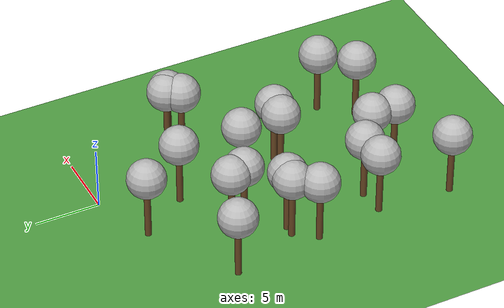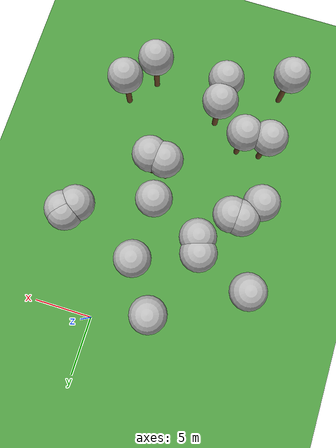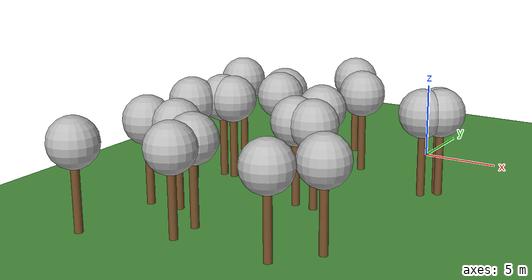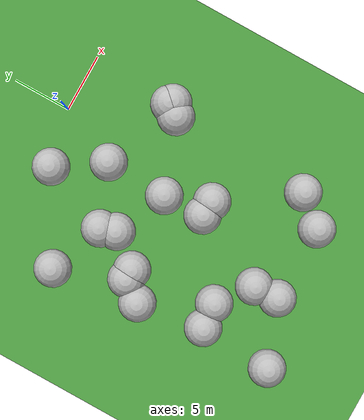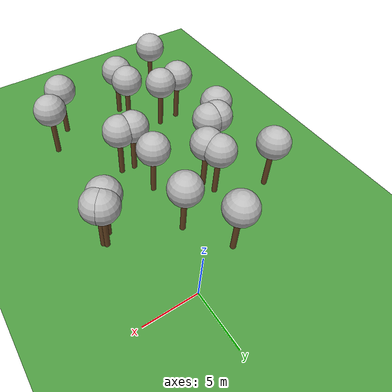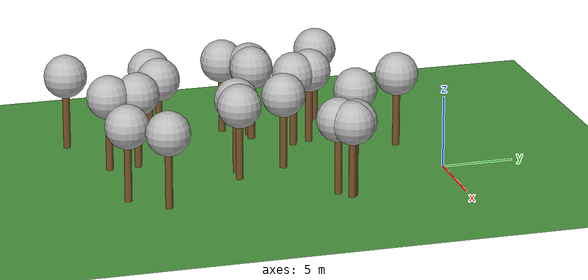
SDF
<sdf version="1.5">
 <world name="default">
  <model name="tree_simple463">
   <static>1</static>
   <link name="link">
    <pose>0 0 0.1 0 -0 0</pose>
    <collision name="collision_trunk">
     <pose>0 0 2 0 -0 0</pose>
     <geometry><cylinder><radius>0.25</radius><length>4</length></cylinder></geometry>
    </collision>
    <collision name="collision_treetop">
     <pose>0 0 5.2 0 -0 0</pose>
     <geometry><sphere><radius>1.5</radius></sphere></geometry>
    </collision>
    <visual name="trunk">
     <pose>0 0 2 0 -0 0</pose>
     <geometry><cylinder><radius>0.25</radius><length>4</length></cylinder></geometry>
     <material>
      <script>
       <uri>model://tree_simple/scripts</uri>
       <uri>model://tree_simple/materials/textures</uri>
       <name>TreeSimple/Trunk</name>
      </script>
     </material>
    </visual>
    <visual name="treetop">
     <pose>0 0 5.2 0 -0 0</pose>
     <geometry><sphere><radius>1.5</radius></sphere></geometry>
     <material>
      <script>
       <uri>model://tree_simple/scripts</uri>
       <uri>model://tree_simple/materials/textures</uri>
       <name>TreeSimple/Treetop</name>
      </script>
     </material>
    </visual>
   </link>
   <pose>4.14452898467 -7.71733475474 0 0 -0 0</pose>
  </model>
  <model name="tree_simple415">
   <static>1</static>
   <link name="link">
    <pose>0 0 0.1 0 -0 0</pose>
    <collision name="collision_trunk">
     <pose>0 0 2 0 -0 0</pose>
     <geometry><cylinder><radius>0.25</radius><length>4</length></cylinder></geometry>
    </collision>
    <collision name="collision_treetop">
     <pose>0 0 5.2 0 -0 0</pose>
     <geometry><sphere><radius>1.5</radius></sphere></geometry>
    </collision>
    <visual name="trunk">
     <pose>0 0 2 0 -0 0</pose>
     <geometry><cylinder><radius>0.25</radius><length>4</length></cylinder></geometry>
     <material>
      <script>
       <uri>model://tree_simple/scripts</uri>
       <uri>model://tree_simple/materials/textures</uri>
       <name>TreeSimple/Trunk</name>
      </script>
     </material>
    </visual>
    <visual name="treetop">
     <pose>0 0 5.2 0 -0 0</pose>
     <geometry><sphere><radius>1.5</radius></sphere></geometry>
     <material>
      <script>
       <uri>model://tree_simple/scripts</uri>
       <uri>model://tree_simple/materials/textures</uri>
       <name>TreeSimple/Treetop</name>
      </script>
     </material>
    </visual>
   </link>
   <pose>-11.6355979465 -5.8252534874 0 0 -0 0</pose>
  </model>
  <model name="tree_simple392">
   <static>1</static>
   <link name="link">
    <pose>0 0 0.1 0 -0 0</pose>
    <collision name="collision_trunk">
     <pose>0 0 2 0 -0 0</pose>
     <geometry><cylinder><radius>0.25</radius><length>4</length></cylinder></geometry>
    </collision>
    <collision name="collision_treetop">
     <pose>0 0 5.2 0 -0 0</pose>
     <geometry><sphere><radius>1.5</radius></sphere></geometry>
    </collision>
    <visual name="trunk">
     <pose>0 0 2 0 -0 0</pose>
     <geometry><cylinder><radius>0.25</radius><length>4</length></cylinder></geometry>
     <material>
      <script>
       <uri>model://tree_simple/scripts</uri>
       <uri>model://tree_simple/materials/textures</uri>
       <name>TreeSimple/Trunk</name>
      </script>
     </material>
    </visual>
    <visual name="treetop">
     <pose>0 0 5.2 0 -0 0</pose>
     <geometry><sphere><radius>1.5</radius></sphere></geometry>
     <material>
      <script>
       <uri>model://tree_simple/scripts</uri>
       <uri>model://tree_simple/materials/textures</uri>
       <name>TreeSimple/Treetop</name>
      </script>
     </material>
    </visual>
   </link>
   <pose>-2.49227665262 -10.6347787598 0 0 -0 0</pose>
  </model>
  <model name="tree_simple364">
   <static>1</static>
   <link name="link">
    <pose>0 0 0.1 0 -0 0</pose>
    <collision name="collision_trunk">
     <pose>0 0 2 0 -0 0</pose>
     <geometry><cylinder><radius>0.25</radius><length>4</length></cylinder></geometry>
    </collision>
    <collision name="collision_treetop">
     <pose>0 0 5.2 0 -0 0</pose>
     <geometry><sphere><radius>1.5</radius></sphere></geometry>
    </collision>
    <visual name="trunk">
     <pose>0 0 2 0 -0 0</pose>
     <geometry><cylinder><radius>0.25</radius><length>4</length></cylinder></geometry>
     <material>
      <script>
       <uri>model://tree_simple/scripts</uri>
       <uri>model://tree_simple/materials/textures</uri>
       <name>TreeSimple/Trunk</name>
      </script>
     </material>
    </visual>
    <visual name="treetop">
     <pose>0 0 5.2 0 -0 0</pose>
     <geometry><sphere><radius>1.5</radius></sphere></geometry>
     <material>
      <script>
       <uri>model://tree_simple/scripts</uri>
       <uri>model://tree_simple/materials/textures</uri>
       <name>TreeSimple/Treetop</name>
      </script>
     </material>
    </visual>
   </link>
   <pose>-5.23612591395 -20.1562951187 0 0 -0 0</pose>
  </model>
  <model name="tree_simple347">
   <static>1</static>
   <link name="link">
    <pose>0 0 0.1 0 -0 0</pose>
    <collision name="collision_trunk">
     <pose>0 0 2 0 -0 0</pose>
     <geometry><cylinder><radius>0.25</radius><length>4</length></cylinder></geometry>
    </collision>
    <collision name="collision_treetop">
     <pose>0 0 5.2 0 -0 0</pose>
     <geometry><sphere><radius>1.5</radius></sphere></geometry>
    </collision>
    <visual name="trunk">
     <pose>0 0 2 0 -0 0</pose>
     <geometry><cylinder><radius>0.25</radius><length>4</length></cylinder></geometry>
     <material>
      <script>
       <uri>model://tree_simple/scripts</uri>
       <uri>model://tree_simple/materials/textures</uri>
       <name>TreeSimple/Trunk</name>
      </script>
     </material>
    </visual>
    <visual name="treetop">
     <pose>0 0 5.2 0 -0 0</pose>
     <geometry><sphere><radius>1.5</radius></sphere></geometry>
     <material>
      <script>
       <uri>model://tree_simple/scripts</uri>
       <uri>model://tree_simple/materials/textures</uri>
       <name>TreeSimple/Treetop</name>
      </script>
     </material>
    </visual>
   </link>
   <pose>-10.2981062424 -24.1175281228 0 0 -0 0</pose>
  </model>
  <model name="tree_simple322">
   <static>1</static>
   <link name="link">
    <pose>0 0 0.1 0 -0 0</pose>
    <collision name="collision_trunk">
     <pose>0 0 2 0 -0 0</pose>
     <geometry><cylinder><radius>0.25</radius><length>4</length></cylinder></geometry>
    </collision>
    <collision name="collision_treetop">
     <pose>0 0 5.2 0 -0 0</pose>
     <geometry><sphere><radius>1.5</radius></sphere></geometry>
    </collision>
    <visual name="trunk">
     <pose>0 0 2 0 -0 0</pose>
     <geometry><cylinder><radius>0.25</radius><length>4</length></cylinder></geometry>
     <material>
      <script>
       <uri>model://tree_simple/scripts</uri>
       <uri>model://tree_simple/materials/textures</uri>
       <name>TreeSimple/Trunk</name>
      </script>
     </material>
    </visual>
    <visual name="treetop">
     <pose>0 0 5.2 0 -0 0</pose>
     <geometry><sphere><radius>1.5</radius></sphere></geometry>
     <material>
      <script>
       <uri>model://tree_simple/scripts</uri>
       <uri>model://tree_simple/materials/textures</uri>
       <name>TreeSimple/Treetop</name>
      </script>
     </material>
    </visual>
   </link>
   <pose>-10.7837387112 -12.8598856653 0 0 -0 0</pose>
  </model>
  <model name="tree_simple317">
   <static>1</static>
   <link name="link">
    <pose>0 0 0.1 0 -0 0</pose>
    <collision name="collision_trunk">
     <pose>0 0 2 0 -0 0</pose>
     <geometry><cylinder><radius>0.25</radius><length>4</length></cylinder></geometry>
    </collision>
    <collision name="collision_treetop">
     <pose>0 0 5.2 0 -0 0</pose>
     <geometry><sphere><radius>1.5</radius></sphere></geometry>
    </collision>
    <visual name="trunk">
     <pose>0 0 2 0 -0 0</pose>
     <geometry><cylinder><radius>0.25</radius><length>4</length></cylinder></geometry>
     <material>
      <script>
       <uri>model://tree_simple/scripts</uri>
       <uri>model://tree_simple/materials/textures</uri>
       <name>TreeSimple/Trunk</name>
      </script>
     </material>
    </visual>
    <visual name="treetop">
     <pose>0 0 5.2 0 -0 0</pose>
     <geometry><sphere><radius>1.5</radius></sphere></geometry>
     <material>
      <script>
       <uri>model://tree_simple/scripts</uri>
       <uri>model://tree_simple/materials/textures</uri>
       <name>TreeSimple/Treetop</name>
      </script>
     </material>
    </visual>
   </link>
   <pose>1.01183279708 -22.2370296953 0 0 -0 0</pose>
  </model>
  <model name="tree_simple303">
   <static>1</static>
   <link name="link">
    <pose>0 0 0.1 0 -0 0</pose>
    <collision name="collision_trunk">
     <pose>0 0 2 0 -0 0</pose>
     <geometry><cylinder><radius>0.25</radius><length>4</length></cylinder></geometry>
    </collision>
    <collision name="collision_treetop">
     <pose>0 0 5.2 0 -0 0</pose>
     <geometry><sphere><radius>1.5</radius></sphere></geometry>
    </collision>
    <visual name="trunk">
     <pose>0 0 2 0 -0 0</pose>
     <geometry><cylinder><radius>0.25</radius><length>4</length></cylinder></geometry>
     <material>
      <script>
       <uri>model://tree_simple/scripts</uri>
       <uri>model://tree_simple/materials/textures</uri>
       <name>TreeSimple/Trunk</name>
      </script>
     </material>
    </visual>
    <visual name="treetop">
     <pose>0 0 5.2 0 -0 0</pose>
     <geometry><sphere><radius>1.5</radius></sphere></geometry>
     <material>
      <script>
       <uri>model://tree_simple/scripts</uri>
       <uri>model://tree_simple/materials/textures</uri>
       <name>TreeSimple/Treetop</name>
      </script>
     </material>
    </visual>
   </link>
   <pose>-9.56094886719 -11.2139048457 0 0 -0 0</pose>
  </model>
  <model name="tree_simple268">
   <static>1</static>
   <link name="link">
    <pose>0 0 0.1 0 -0 0</pose>
    <collision name="collision_trunk">
     <pose>0 0 2 0 -0 0</pose>
     <geometry><cylinder><radius>0.25</radius><length>4</length></cylinder></geometry>
    </collision>
    <collision name="collision_treetop">
     <pose>0 0 5.2 0 -0 0</pose>
     <geometry><sphere><radius>1.5</radius></sphere></geometry>
    </collision>
    <visual name="trunk">
     <pose>0 0 2 0 -0 0</pose>
     <geometry><cylinder><radius>0.25</radius><length>4</length></cylinder></geometry>
     <material>
      <script>
       <uri>model://tree_simple/scripts</uri>
       <uri>model://tree_simple/materials/textures</uri>
       <name>TreeSimple/Trunk</name>
      </script>
     </material>
    </visual>
    <visual name="treetop">
     <pose>0 0 5.2 0 -0 0</pose>
     <geometry><sphere><radius>1.5</radius></sphere></geometry>
     <material>
      <script>
       <uri>model://tree_simple/scripts</uri>
       <uri>model://tree_simple/materials/textures</uri>
       <name>TreeSimple/Treetop</name>
      </script>
     </material>
    </visual>
   </link>
   <pose>-9.9717965144 -18.2645258901 0 0 -0 0</pose>
  </model>
  <model name="tree_simple253">
   <static>1</static>
   <link name="link">
    <pose>0 0 0.1 0 -0 0</pose>
    <collision name="collision_trunk">
     <pose>0 0 2 0 -0 0</pose>
     <geometry><cylinder><radius>0.25</radius><length>4</length></cylinder></geometry>
    </collision>
    <collision name="collision_treetop">
     <pose>0 0 5.2 0 -0 0</pose>
     <geometry><sphere><radius>1.5</radius></sphere></geometry>
    </collision>
    <visual name="trunk">
     <pose>0 0 2 0 -0 0</pose>
     <geometry><cylinder><radius>0.25</radius><length>4</length></cylinder></geometry>
     <material>
      <script>
       <uri>model://tree_simple/scripts</uri>
       <uri>model://tree_simple/materials/textures</uri>
       <name>TreeSimple/Trunk</name>
      </script>
     </material>
    </visual>
    <visual name="treetop">
     <pose>0 0 5.2 0 -0 0</pose>
     <geometry><sphere><radius>1.5</radius></sphere></geometry>
     <material>
      <script>
       <uri>model://tree_simple/scripts</uri>
       <uri>model://tree_simple/materials/textures</uri>
       <name>TreeSimple/Treetop</name>
      </script>
     </material>
    </visual>
   </link>
   <pose>-6.71887912458 -8.7537434381 0 0 -0 0</pose>
  </model>
  <model name="tree_simple234">
   <static>1</static>
   <link name="link">
    <pose>0 0 0.1 0 -0 0</pose>
    <collision name="collision_trunk">
     <pose>0 0 2 0 -0 0</pose>
     <geometry><cylinder><radius>0.25</radius><length>4</length></cylinder></geometry>
    </collision>
    <collision name="collision_treetop">
     <pose>0 0 5.2 0 -0 0</pose>
     <geometry><sphere><radius>1.5</radius></sphere></geometry>
    </collision>
    <visual name="trunk">
     <pose>0 0 2 0 -0 0</pose>
     <geometry><cylinder><radius>0.25</radius><length>4</length></cylinder></geometry>
     <material>
      <script>
       <uri>model://tree_simple/scripts</uri>
       <uri>model://tree_simple/materials/textures</uri>
       <name>TreeSimple/Trunk</name>
      </script>
     </material>
    </visual>
    <visual name="treetop">
     <pose>0 0 5.2 0 -0 0</pose>
     <geometry><sphere><radius>1.5</radius></sphere></geometry>
     <material>
      <script>
       <uri>model://tree_simple/scripts</uri>
       <uri>model://tree_simple/materials/textures</uri>
       <name>TreeSimple/Treetop</name>
      </script>
     </material>
    </visual>
   </link>
   <pose>-7.13671903639 -7.51188908491 0 0 -0 0</pose>
  </model>
  <model name="tree_simple222">
   <static>1</static>
   <link name="link">
    <pose>0 0 0.1 0 -0 0</pose>
    <collision name="collision_trunk">
     <pose>0 0 2 0 -0 0</pose>
     <geometry><cylinder><radius>0.25</radius><length>4</length></cylinder></geometry>
    </collision>
    <collision name="collision_treetop">
     <pose>0 0 5.2 0 -0 0</pose>
     <geometry><sphere><radius>1.5</radius></sphere></geometry>
    </collision>
    <visual name="trunk">
     <pose>0 0 2 0 -0 0</pose>
     <geometry><cylinder><radius>0.25</radius><length>4</length></cylinder></geometry>
     <material>
      <script>
       <uri>model://tree_simple/scripts</uri>
       <uri>model://tree_simple/materials/textures</uri>
       <name>TreeSimple/Trunk</name>
      </script>
     </material>
    </visual>
    <visual name="treetop">
     <pose>0 0 5.2 0 -0 0</pose>
     <geometry><sphere><radius>1.5</radius></sphere></geometry>
     <material>
      <script>
       <uri>model://tree_simple/scripts</uri>
       <uri>model://tree_simple/materials/textures</uri>
       <name>TreeSimple/Treetop</name>
      </script>
     </material>
    </visual>
   </link>
   <pose>3.92504774623 -7.51224141252 0 0 -0 0</pose>
  </model>
  <model name="tree_simple195">
   <static>1</static>
   <link name="link">
    <pose>0 0 0.1 0 -0 0</pose>
    <collision name="collision_trunk">
     <pose>0 0 2 0 -0 0</pose>
     <geometry><cylinder><radius>0.25</radius><length>4</length></cylinder></geometry>
    </collision>
    <collision name="collision_treetop">
     <pose>0 0 5.2 0 -0 0</pose>
     <geometry><sphere><radius>1.5</radius></sphere></geometry>
    </collision>
    <visual name="trunk">
     <pose>0 0 2 0 -0 0</pose>
     <geometry><cylinder><radius>0.25</radius><length>4</length></cylinder></geometry>
     <material>
      <script>
       <uri>model://tree_simple/scripts</uri>
       <uri>model://tree_simple/materials/textures</uri>
       <name>TreeSimple/Trunk</name>
      </script>
     </material>
    </visual>
    <visual name="treetop">
     <pose>0 0 5.2 0 -0 0</pose>
     <geometry><sphere><radius>1.5</radius></sphere></geometry>
     <material>
      <script>
       <uri>model://tree_simple/scripts</uri>
       <uri>model://tree_simple/materials/textures</uri>
       <name>TreeSimple/Treetop</name>
      </script>
     </material>
    </visual>
   </link>
   <pose>2.97634626893 -19.931363898 0 0 -0 0</pose>
  </model>
  <model name="tree_simple155">
   <static>1</static>
   <link name="link">
    <pose>0 0 0.1 0 -0 0</pose>
    <collision name="collision_trunk">
     <pose>0 0 2 0 -0 0</pose>
     <geometry><cylinder><radius>0.25</radius><length>4</length></cylinder></geometry>
    </collision>
    <collision name="collision_treetop">
     <pose>0 0 5.2 0 -0 0</pose>
     <geometry><sphere><radius>1.5</radius></sphere></geometry>
    </collision>
    <visual name="trunk">
     <pose>0 0 2 0 -0 0</pose>
     <geometry><cylinder><radius>0.25</radius><length>4</length></cylinder></geometry>
     <material>
      <script>
       <uri>model://tree_simple/scripts</uri>
       <uri>model://tree_simple/materials/textures</uri>
       <name>TreeSimple/Trunk</name>
      </script>
     </material>
    </visual>
    <visual name="treetop">
     <pose>0 0 5.2 0 -0 0</pose>
     <geometry><sphere><radius>1.5</radius></sphere></geometry>
     <material>
      <script>
       <uri>model://tree_simple/scripts</uri>
       <uri>model://tree_simple/materials/textures</uri>
       <name>TreeSimple/Treetop</name>
      </script>
     </material>
    </visual>
   </link>
   <pose>-2.3717624472 -13.9733365428 0 0 -0 0</pose>
  </model>
  <model name="tree_simple154">
   <static>1</static>
   <link name="link">
    <pose>0 0 0.1 0 -0 0</pose>
    <collision name="collision_trunk">
     <pose>0 0 2 0 -0 0</pose>
     <geometry><cylinder><radius>0.25</radius><length>4</length></cylinder></geometry>
    </collision>
    <collision name="collision_treetop">
     <pose>0 0 5.2 0 -0 0</pose>
     <geometry><sphere><radius>1.5</radius></sphere></geometry>
    </collision>
    <visual name="trunk">
     <pose>0 0 2 0 -0 0</pose>
     <geometry><cylinder><radius>0.25</radius><length>4</length></cylinder></geometry>
     <material>
      <script>
       <uri>model://tree_simple/scripts</uri>
       <uri>model://tree_simple/materials/textures</uri>
       <name>TreeSimple/Trunk</name>
      </script>
     </material>
    </visual>
    <visual name="treetop">
     <pose>0 0 5.2 0 -0 0</pose>
     <geometry><sphere><radius>1.5</radius></sphere></geometry>
     <material>
      <script>
       <uri>model://tree_simple/scripts</uri>
       <uri>model://tree_simple/materials/textures</uri>
       <name>TreeSimple/Treetop</name>
      </script>
     </material>
    </visual>
   </link>
   <pose>3.295584565 -8.44091810905 0 0 -0 0</pose>
  </model>
  <model name="tree_simple140">
   <static>1</static>
   <link name="link">
    <pose>0 0 0.1 0 -0 0</pose>
    <collision name="collision_trunk">
     <pose>0 0 2 0 -0 0</pose>
     <geometry><cylinder><radius>0.25</radius><length>4</length></cylinder></geometry>
    </collision>
    <collision name="collision_treetop">
     <pose>0 0 5.2 0 -0 0</pose>
     <geometry><sphere><radius>1.5</radius></sphere></geometry>
    </collision>
    <visual name="trunk">
     <pose>0 0 2 0 -0 0</pose>
     <geometry><cylinder><radius>0.25</radius><length>4</length></cylinder></geometry>
     <material>
      <script>
       <uri>model://tree_simple/scripts</uri>
       <uri>model://tree_simple/materials/textures</uri>
       <name>TreeSimple/Trunk</name>
      </script>
     </material>
    </visual>
    <visual name="treetop">
     <pose>0 0 5.2 0 -0 0</pose>
     <geometry><sphere><radius>1.5</radius></sphere></geometry>
     <material>
      <script>
       <uri>model://tree_simple/scripts</uri>
       <uri>model://tree_simple/materials/textures</uri>
       <name>TreeSimple/Treetop</name>
      </script>
     </material>
    </visual>
   </link>
   <pose>-1.08104360216 -14.0922455385 0 0 -0 0</pose>
  </model>
  <model name="tree_simple138">
   <static>1</static>
   <link name="link">
    <pose>0 0 0.1 0 -0 0</pose>
    <collision name="collision_trunk">
     <pose>0 0 2 0 -0 0</pose>
     <geometry><cylinder><radius>0.25</radius><length>4</length></cylinder></geometry>
    </collision>
    <collision name="collision_treetop">
     <pose>0 0 5.2 0 -0 0</pose>
     <geometry><sphere><radius>1.5</radius></sphere></geometry>
    </collision>
    <visual name="trunk">
     <pose>0 0 2 0 -0 0</pose>
     <geometry><cylinder><radius>0.25</radius><length>4</length></cylinder></geometry>
     <material>
      <script>
       <uri>model://tree_simple/scripts</uri>
       <uri>model://tree_simple/materials/textures</uri>
       <name>TreeSimple/Trunk</name>
      </script>
     </material>
    </visual>
    <visual name="treetop">
     <pose>0 0 5.2 0 -0 0</pose>
     <geometry><sphere><radius>1.5</radius></sphere></geometry>
     <material>
      <script>
       <uri>model://tree_simple/scripts</uri>
       <uri>model://tree_simple/materials/textures</uri>
       <name>TreeSimple/Treetop</name>
      </script>
     </material>
    </visual>
   </link>
   <pose>-8.7404095495 -11.2488158501 0 0 -0 0</pose>
  </model>
  <model name="tree_simple64">
   <static>1</static>
   <link name="link">
    <pose>0 0 0.1 0 -0 0</pose>
    <collision name="collision_trunk">
     <pose>0 0 2 0 -0 0</pose>
     <geometry><cylinder><radius>0.25</radius><length>4</length></cylinder></geometry>
    </collision>
    <collision name="collision_treetop">
     <pose>0 0 5.2 0 -0 0</pose>
     <geometry><sphere><radius>1.5</radius></sphere></geometry>
    </collision>
    <visual name="trunk">
     <pose>0 0 2 0 -0 0</pose>
     <geometry><cylinder><radius>0.25</radius><length>4</length></cylinder></geometry>
     <material>
      <script>
       <uri>model://tree_simple/scripts</uri>
       <uri>model://tree_simple/materials/textures</uri>
       <name>TreeSimple/Trunk</name>
      </script>
     </material>
    </visual>
    <visual name="treetop">
     <pose>0 0 5.2 0 -0 0</pose>
     <geometry><sphere><radius>1.5</radius></sphere></geometry>
     <material>
      <script>
       <uri>model://tree_simple/scripts</uri>
       <uri>model://tree_simple/materials/textures</uri>
       <name>TreeSimple/Treetop</name>
      </script>
     </material>
    </visual>
   </link>
   <pose>-5.16461725533 -22.1747780475 0 0 -0 0</pose>
  </model>
  <model name="tree_simple60">
   <static>1</static>
   <link name="link">
    <pose>0 0 0.1 0 -0 0</pose>
    <collision name="collision_trunk">
     <pose>0 0 2 0 -0 0</pose>
     <geometry><cylinder><radius>0.25</radius><length>4</length></cylinder></geometry>
    </collision>
    <collision name="collision_treetop">
     <pose>0 0 5.2 0 -0 0</pose>
     <geometry><sphere><radius>1.5</radius></sphere></geometry>
    </collision>
    <visual name="trunk">
     <pose>0 0 2 0 -0 0</pose>
     <geometry><cylinder><radius>0.25</radius><length>4</length></cylinder></geometry>
     <material>
      <script>
       <uri>model://tree_simple/scripts</uri>
       <uri>model://tree_simple/materials/textures</uri>
       <name>TreeSimple/Trunk</name>
      </script>
     </material>
    </visual>
    <visual name="treetop">
     <pose>0 0 5.2 0 -0 0</pose>
     <geometry><sphere><radius>1.5</radius></sphere></geometry>
     <material>
      <script>
       <uri>model://tree_simple/scripts</uri>
       <uri>model://tree_simple/materials/textures</uri>
       <name>TreeSimple/Treetop</name>
      </script>
     </material>
    </visual>
   </link>
   <pose>-4.80911013023 -1.85604057601 0 0 -0 0</pose>
  </model>
  <model name="tree_simple18">
   <static>1</static>
   <link name="link">
    <pose>0 0 0.1 0 -0 0</pose>
    <collision name="collision_trunk">
     <pose>0 0 2 0 -0 0</pose>
     <geometry><cylinder><radius>0.25</radius><length>4</length></cylinder></geometry>
    </collision>
    <collision name="collision_treetop">
     <pose>0 0 5.2 0 -0 0</pose>
     <geometry><sphere><radius>1.5</radius></sphere></geometry>
    </collision>
    <visual name="trunk">
     <pose>0 0 2 0 -0 0</pose>
     <geometry><cylinder><radius>0.25</radius><length>4</length></cylinder></geometry>
     <material>
      <script>
       <uri>model://tree_simple/scripts</uri>
       <uri>model://tree_simple/materials/textures</uri>
       <name>TreeSimple/Trunk</name>
      </script>
     </material>
    </visual>
    <visual name="treetop">
     <pose>0 0 5.2 0 -0 0</pose>
     <geometry><sphere><radius>1.5</radius></sphere></geometry>
     <material>
      <script>
       <uri>model://tree_simple/scripts</uri>
       <uri>model://tree_simple/materials/textures</uri>
       <name>TreeSimple/Treetop</name>
      </script>
     </material>
    </visual>
   </link>
   <pose>-7.91294561281 -18.0894598626 0 0 -0 0</pose>
  </model>
  <model name="tree_simple2">
   <static>1</static>
   <link name="link">
    <pose>0 0 0.1 0 -0 0</pose>
    <collision name="collision_trunk">
     <pose>0 0 2 0 -0 0</pose>
     <geometry><cylinder><radius>0.25</radius><length>4</length></cylinder></geometry>
    </collision>
    <collision name="collision_treetop">
     <pose>0 0 5.2 0 -0 0</pose>
     <geometry><sphere><radius>1.5</radius></sphere></geometry>
    </collision>
    <visual name="trunk">
     <pose>0 0 2 0 -0 0</pose>
     <geometry><cylinder><radius>0.25</radius><length>4</length></cylinder></geometry>
     <material>
      <script>
       <uri>model://tree_simple/scripts</uri>
       <uri>model://tree_simple/materials/textures</uri>
       <name>TreeSimple/Trunk</name>
      </script>
     </material>
    </visual>
    <visual name="treetop">
     <pose>0 0 5.2 0 -0 0</pose>
     <geometry><sphere><radius>1.5</radius></sphere></geometry>
     <material>
      <script>
       <uri>model://tree_simple/scripts</uri>
       <uri>model://tree_simple/materials/textures</uri>
       <name>TreeSimple/Treetop</name>
      </script>
     </material>
    </visual>
   </link>
   <pose>-2.32374702534 -5.59991455471 0 0 -0 0</pose>
  </model>
  <model name="ground_plane">
   <static>true</static>
   <link name="link">
    <collision name="collision">
     <geometry><plane><normal>0 0 1</normal><size>250 250</size></plane></geometry>
     <surface><friction><ode><mu>1</mu><mu2>1</mu2></ode></friction></surface>
    </collision>
    <visual name="grass">
     <cast_shadows>false</cast_shadows>
     <geometry><plane><normal>0 0 1</normal><size>150 250</size></plane></geometry>
     <material>
      <script><uri>file://media/materials/scripts/Gazebo.material</uri><name>Gazebo/Grass</name></script>
     </material>
    </visual>
   </link>
  </model>
 </world>
</sdf>
